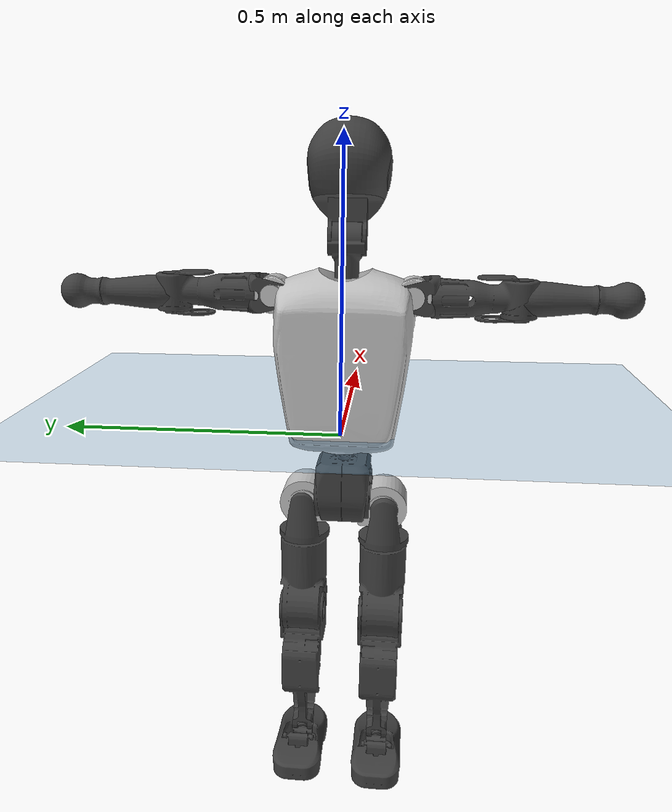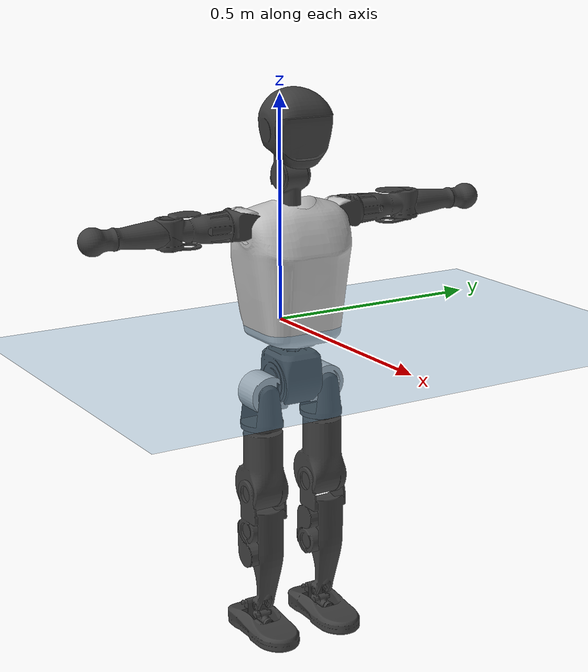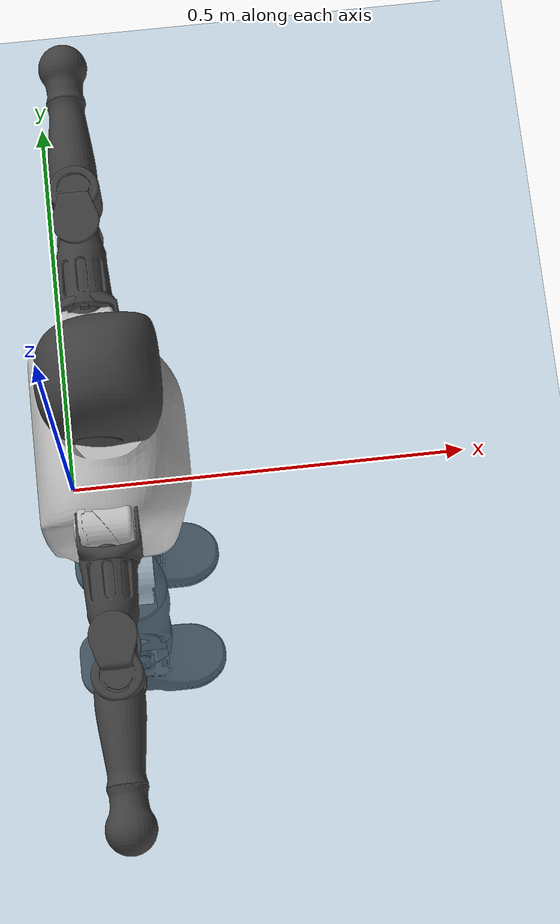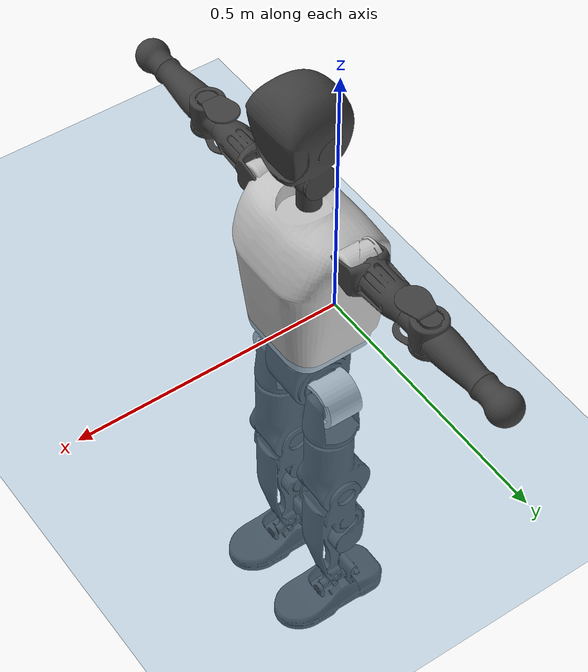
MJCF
<mujoco model="T1">
  <compiler angle="radian" assetdir="assets" balanceinertia="true" inertiafromgeom="false"/>

  <option timestep="0.005" density="1.2" viscosity="2e-05"/>

  <size nkey="1"/>

  <visual>
    <quality shadowsize="8192"/>
    <map shadowclip="0.5"/>
  </visual>

  <default>
    <default class="/">
      <joint armature="0.01" damping="0.01" frictionloss="0.1"/>
      <geom contype="0" conaffinity="0" group="1" solref="-1000 -80"/>
      <site size="0.01 0.005 0.005" group="5"/>
      <general forcelimited="true" biastype="affine" gainprm="25" biasprm="0 -25 -0.6"/>
      <default class="t1">
        <geom rgba="0.25 0.25 0.25 1"/>
        <default class="visual">
          <geom type="mesh" group="2"/>
        </default>
        <default class="collision">
          <geom group="3"/>
        </default>
        <default class="foot">
          <geom size="0.1115 0.05 0.015" type="box" condim="6" group="4" priority="1" solimp="0.015 1 0.015"/>
        </default>
        <default class="reward_collision_sphere">
          <geom group="5" rgba="1 0 0 1"/>
        </default>
      </default>
    </default>
  </default>

  <asset>
    <texture type="skybox" colorspace="auto" name="//unnamed_texture_0" builtin="gradient" rgb1="0.95 0.95 0.95" rgb2="0.95 0.95 0.95" width="100" height="600"/>
    <texture type="2d" colorspace="auto" name="texplane" builtin="checker" rgb1="0.345 0.575 0.748" rgb2="0.345 0.575 0.748" markrgb="1 1 1" width="512" height="512"/>
    <material name="MatPlane" class="/" texture="texplane" texuniform="true" texrepeat="2 2" specular="0.9"/>
    <mesh name="Trunk" class="/" file="Trunk.stl"/>
    <mesh name="H1" class="/" file="H1.stl"/>
    <mesh name="H2" class="/" file="H2.stl"/>
    <mesh name="AL1" class="/" file="AL1.stl"/>
    <mesh name="AL2" class="/" file="AL2.stl"/>
    <mesh name="AL3" class="/" file="AL3.stl"/>
    <mesh name="left_hand_link" class="/" file="left_hand_link.stl"/>
    <mesh name="AR1" class="/" file="AR1.stl"/>
    <mesh name="AR2" class="/" file="AR2.stl"/>
    <mesh name="AR3" class="/" file="AR3.stl"/>
    <mesh name="right_hand_link" class="/" file="right_hand_link.stl"/>
    <mesh name="Waist" class="/" file="Waist.stl"/>
    <mesh name="Hip_Pitch_Left" class="/" file="Hip_Pitch_Left.stl"/>
    <mesh name="Hip_Roll_Left" class="/" file="Hip_Roll_Left.stl"/>
    <mesh name="Hip_Yaw_Left" class="/" file="Hip_Yaw_Left.stl"/>
    <mesh name="Shank_Left" class="/" file="Shank_Left.stl"/>
    <mesh name="Ankle_Cross_Left" class="/" file="Ankle_Cross_Left.stl"/>
    <mesh name="left_foot_link" class="/" file="left_foot_link.stl"/>
    <mesh name="Hip_Pitch_Right" class="/" file="Hip_Pitch_Right.stl"/>
    <mesh name="Hip_Roll_Right" class="/" file="Hip_Roll_Right.stl"/>
    <mesh name="Hip_Yaw_Right" class="/" file="Hip_Yaw_Right.stl"/>
    <mesh name="Shank_Right" class="/" file="Shank_Right.stl"/>
    <mesh name="Ankle_Cross_Right" class="/" file="Ankle_Cross_Right.stl"/>
    <mesh name="right_foot_link" class="/" file="right_foot_link.stl"/>
  </asset>

  <worldbody>
    <geom name="floor" class="/" size="100 100 0.125" type="plane" group="0" material="MatPlane"/>
    <light name="toplight_shadow" class="/" pos="0 0 5" dir="0.0990148 0.0990148 -0.990148" type="directional" ambient="0.04 0.04 0.04" diffuse="0.55 0.55 0.55" specular="0.12 0.12 0.12"/>
    <light name="toplight_fill" class="/" pos="0 0 5" dir="0.0990148 0.0990148 -0.990148" type="directional" castshadow="false" ambient="0.04 0.04 0.04" diffuse="0.3 0.3 0.3" specular="0.08 0.08 0.08"/>
    <body name="trunk" childclass="t1" pos="-0.000221641 -0.000956718 0.002738" quat="1 -9.05539e-05 7.20405e-05 1.90788e-05">
      <inertial pos="0.0479292 -0.00355221 0.113924" quat="0.999928 0.0103524 -0.00571832 0.00186243" mass="7.78673" diaginertia="0.0415426 0.0125214 0.0853013"/>
      <joint name="//unnamed_joint_0" type="free" armature="0" damping="0" frictionloss="0"/>
      <geom name="//unnamed_geom_1" class="visual" rgba="0.76 0.76 0.76 1" mesh="Trunk"/>
      <geom name="//unnamed_geom_2" class="collision" size="0.0660525 0.0880699 0.132105" pos="0.0511063 0 0.130829" type="box"/>
      <geom name="//unnamed_geom_3" class="reward_collision_sphere" size="0.10128" pos="0.0511063 0 0.109024"/>
      <geom name="//unnamed_geom_4" class="reward_collision_sphere" size="0.0132105" pos="0.0511063 0.0595072 0"/>
      <geom name="//unnamed_geom_5" class="reward_collision_sphere" size="0.0132105" pos="0.0511063 -0.0595072 0"/>
      <geom name="//unnamed_geom_6" class="reward_collision_sphere" size="0.0132105" pos="0.0511063 0.074909 0.196243"/>
      <geom name="//unnamed_geom_7" class="reward_collision_sphere" size="0.0132105" pos="0.0511063 -0.074909 0.196243"/>
      <site name="imu" pos="0.000541428 0.0138941 -0.00450837" size="0.00880699"/>
      <camera name="track" pos="0 -1.40017 0" quat="0.707107 0.707107 0 0" mode="trackcom"/>
      <camera name="ego_camera" pos="0.103916 0 0.457901" quat="-0.5 -0.5 0.5 0.5"/>
      <body name="H1" pos="0.0525223 -0.00265778 0.26448" quat="0.999999 0.000438432 0.000850853 0.000994778">
        <inertial pos="-0.00190731 -4.82276e-05 0.0635035" quat="0.763647 -0.0127568 0.00232874 0.645503" mass="0.293998" diaginertia="0.000106166 3.83948e-05 0.000232112"/>
        <joint name="AAHead_yaw" pos="0 0 0" axis="0.00225371 0.000871089 0.999997" range="-1.55085 1.61841" armature="0.00886238" damping="0" frictionloss="0.0776811"/>
        <geom name="//unnamed_geom_8" class="visual" mesh="H1"/>
        <body name="H2" pos="-0.000535172 -0.000449069 0.0653919" quat="0.999999 0.000792187 0.000546481 -0.000438247">
          <inertial pos="0.00463344 0.00262171 0.110193" quat="0.987902 0.113469 -0.0664158 -0.0822387" mass="0.430652" diaginertia="0.000911004 0.000320126 0.00263524"/>
          <joint name="Head_pitch" pos="0 0 0" axis="0.012743 -0.999914 -0.00308911" range="-1.23732 0.363006" armature="0.00888498" damping="0.00283303" frictionloss="0.0896755"/>
          <geom name="//unnamed_geom_9" class="visual" mesh="H2"/>
          <geom name="//unnamed_geom_10" class="collision" size="0.070456" pos="0.00851772 0 0.119927"/>
          <geom name="//unnamed_geom_11" class="reward_collision_sphere" size="0.079263" pos="0.0170354 0 0.109024"/>
        </body>
      </body>
      <body name="AL1" pos="0.0494128 0.0757849 0.236725" quat="1 9.2419e-07 0.000466664 7.09442e-05">
        <inertial pos="-0.000652233 0.0292347 -0.000113711" quat="0.513691 0.495196 -0.504646 0.486041" mass="0.347417" diaginertia="0.000581533 0.000210159 0.000436491"/>
        <joint name="Left_Shoulder_Pitch" pos="0 0 0" axis="0.00368749 0.99993 -0.0112194" range="-3.25584 1.219" armature="0.00755411" damping="0" frictionloss="0.0821848"/>
        <geom name="//unnamed_geom_12" class="visual" rgba="0.76 0.76 0.76 1" mesh="AL1"/>
        <body name="AL2" pos="0.000630663 0.03403 -0.000302842" quat="0.999999 0.000354498 0.000178131 0.00124254">
          <inertial pos="0.00564266 0.0284096 -0.000280592" quat="0.486234 0.517251 -0.491024 0.504899" mass="0.105254" diaginertia="0.000172502 5.65917e-05 0.000259372"/>
          <joint name="Left_Shoulder_Roll" pos="0 0 0" axis="-0.999996 0.000267037 -0.00279401" range="-1.57527 1.75555" armature="0.0098997" damping="0.0206839" frictionloss="0.0925533"/>
          <geom name="//unnamed_geom_13" class="visual" mesh="AL2"/>
          <body name="AL3" pos="-0.00138689 0.0414307 0.00100321" quat="0.999999 -0.000615672 -0.00109764 -0.000533813">
            <inertial pos="0.00238236 0.0587866 0.00102062" quat="0.703125 0.710996 -0.00830414 0.00552308" mass="0.714755" diaginertia="0.0059436 0.00226923 0.000978984"/>
            <joint name="Left_Elbow_Pitch" pos="0 0 0" axis="-0.000585844 -1 -0.000195073" stiffness="0.00347779" range="-2.26597 2.31661" armature="0.0100244" damping="0.00935259" frictionloss="0.0985483"/>
            <geom name="//unnamed_geom_14" class="visual" mesh="AL3"/>
            <geom name="//unnamed_geom_15" class="collision" size="0.026421 0.0660525" pos="0 0.0350042 0" quat="0.707105 0.707108 0 0" type="cylinder"/>
            <geom name="//unnamed_geom_16" class="reward_collision_sphere" size="0.0317052"/>
            <body name="left_hand_link" pos="-0.00146898 0.103923 -0.00144844" quat="0.999999 0.000263885 0.000257985 0.00114837">
              <inertial pos="0.00141506 0.0794218 0.000176898" quat="0.709127 0.705076 0.00179256 -0.00186459" mass="0.218559" diaginertia="0.00377136 0.00141335 0.000319261"/>
              <joint name="Left_Elbow_Yaw" pos="0 0 0" axis="0.0141987 -0.00590169 0.999882" range="-2.47359 0.048299" armature="0.00766921" damping="0" frictionloss="0.095808"/>
              <geom name="//unnamed_geom_17" class="visual" mesh="left_hand_link"/>
              <geom name="//unnamed_geom_18" class="collision" size="0.026421 0.0770612" pos="0 0.091011 0" quat="0.707105 0.707108 0 0" type="cylinder"/>
              <geom name="//unnamed_geom_19" class="reward_collision_sphere" size="0.044035"/>
              <geom name="//unnamed_geom_20" class="reward_collision_sphere" size="0.0308245" pos="0 0.0770093 0"/>
              <geom name="//unnamed_geom_21" class="reward_collision_sphere" size="0.0308245" pos="0 0.150518 0"/>
            </body>
          </body>
        </body>
      </body>
      <body name="AR1" pos="0.0490964 -0.0704869 0.235595" quat="1 1.58649e-05 0.000448433 -2.86921e-06">
        <inertial pos="-0.000820648 -0.0344878 0.000101275" quat="0.504274 0.495739 -0.503495 0.496431" mass="0.371407" diaginertia="0.000611401 0.000213283 0.000450288"/>
        <joint name="Right_Shoulder_Pitch" pos="0 0 0" axis="0.0121741 -0.999926 -0.000128533" range="-1.22685 3.36271" armature="0.00919976" damping="0.013335" frictionloss="0.0768268"/>
        <geom name="//unnamed_geom_22" class="visual" rgba="0.76 0.76 0.76 1" mesh="AR1"/>
        <body name="AR2" pos="0.00195126 -0.0345911 -0.000645874" quat="1 -4.15189e-05 -1.78355e-05 -6.51756e-05">
          <inertial pos="0.00604696 -0.0265446 -0.000898663" quat="0.510722 0.488038 -0.511951 0.488761" mass="0.116602" diaginertia="0.000185072 5.86885e-05 0.000282267"/>
          <joint name="Right_Shoulder_Roll" pos="0 0 0" axis="-0.999976 0.00364373 0.00593765" range="-1.72706 1.62546" armature="0.00926523" damping="0" frictionloss="0.100371"/>
          <geom name="//unnamed_geom_23" class="visual" mesh="AR2"/>
          <body name="AR3" pos="-0.0030309 -0.04348 -0.00287176" quat="1 0.000562573 -0.00027789 -0.0004524">
            <inertial pos="-0.000564346 -0.0570983 -0.000191453" quat="0.710266 0.703915 -0.0027878 0.00414808" mass="0.738087" diaginertia="0.00590748 0.00221137 0.000977278"/>
            <joint name="Right_Elbow_Pitch" pos="0 0 0" axis="0.000613148 1 -0.000215244" range="-2.32682 2.21286" armature="0.00891455" damping="0.0125411" frictionloss="0.0884002"/>
            <geom name="//unnamed_geom_24" class="visual" mesh="AR3"/>
            <geom name="//unnamed_geom_25" class="collision" size="0.026421 0.0660525" pos="0 -0.0350042 0" quat="0.707105 0.707108 0 0" type="cylinder"/>
            <geom name="//unnamed_geom_26" class="reward_collision_sphere" size="0.0317052"/>
            <body name="right_hand_link" pos="-0.00100447 -0.102318 0.00107113" quat="1 5.99387e-06 -1.18979e-05 1.0567e-05">
              <inertial pos="0.000270854 -0.0763481 -0.00143198" quat="0.707457 0.706657 -0.0012696 -0.0117446" mass="0.210468" diaginertia="0.00350268 0.00134459 0.000323323"/>
              <joint name="Right_Elbow_Yaw" pos="0 0 0" axis="-0.00223458 0.0159165 0.999871" stiffness="0.00195112" range="0.0121198 2.49342" armature="0.00915559" damping="0.0075814" frictionloss="0.0915621"/>
              <geom name="//unnamed_geom_27" class="visual" mesh="right_hand_link"/>
              <geom name="//unnamed_geom_28" class="collision" size="0.026421 0.0770612" pos="0 -0.091011 0" quat="0.707105 0.707108 0 0" type="cylinder"/>
              <geom name="//unnamed_geom_29" class="reward_collision_sphere" size="0.044035"/>
              <geom name="//unnamed_geom_30" class="reward_collision_sphere" size="0.0308245" pos="0 -0.0770093 0"/>
              <geom name="//unnamed_geom_31" class="reward_collision_sphere" size="0.0308245" pos="0 -0.150518 0"/>
            </body>
          </body>
        </body>
      </body>
      <body name="Waist" pos="0.0515856 -0.00252268 -0.126408" quat="0.999999 0.000394935 -0.000303104 -0.00157019">
        <inertial pos="0.000474527 -0.00382135 0.00691739" quat="0.983647 0.000352818 -0.180089 0.00267129" mass="1.77586" diaginertia="0.00237391 0.000869183 0.00706271"/>
        <joint name="Waist" pos="0 0 0" axis="0.00700802 0.0112519 0.999912" stiffness="0.00637787" range="-1.57934 1.56323" armature="0.00879494" damping="0" frictionloss="0.0766783"/>
        <geom name="//unnamed_geom_32" class="visual" mesh="Waist"/>
        <body name="Hip_Pitch_Left" pos="0.00287792 0.0721339 0.00250371" quat="0.999999 0.000790804 -0.00105639 -0.000944822">
          <inertial pos="0.000547408 -0.00537688 -0.0195184" quat="0.975881 0.218108 0.00760586 0.00521218" mass="0.694971" diaginertia="0.000802091 0.000247947 0.00185921"/>
          <joint name="Left_Hip_Pitch" pos="0 0 0" axis="0.000703921 1 -0.000291132" range="-1.77717 1.57297" armature="0.00886809" damping="0.00691196" frictionloss="0.0914911"/>
          <geom name="//unnamed_geom_33" class="visual" rgba="0.76 0.76 0.76 1" mesh="Hip_Pitch_Left"/>
          <body name="Hip_Roll_Left" pos="0.00257428 0.00213806 -0.0198734" quat="0.999999 -6.2502e-05 -0.00100771 -0.000177421">
            <inertial pos="-0.00159666 -0.00314829 -0.0590192" quat="0.702752 -0.0146188 -0.00161489 0.711282" mass="0.258792" diaginertia="0.00074525 0.000248804 0.000781994"/>
            <joint name="Left_Hip_Roll" pos="0 0 0" axis="-0.999951 0.0026255 -0.0095429" range="-1.62183 0.25519" armature="0.00992694" damping="0.00644591" frictionloss="0.0910785"/>
            <geom name="//unnamed_geom_34" class="visual" mesh="Hip_Roll_Left"/>
            <geom name="//unnamed_geom_35" class="reward_collision_sphere" size="0.0484385"/>
            <body name="Hip_Yaw_Left" pos="0.00174745 0.00148815 -0.0871148" quat="0.999999 0.00142826 0.00026123 0.000235271">
              <inertial pos="-0.00683841 0.000265298 -0.0991914" quat="0.694333 -0.0374415 -0.0336697 0.71789" mass="1.49658" diaginertia="0.0112487 0.0042834 0.00415944"/>
              <joint name="Left_Hip_Yaw" pos="0 0 0" axis="0.00535662 0.000862785 -0.999985" range="-1.0188 0.95517" armature="0.00833182" damping="0.0126919" frictionloss="0.0946704"/>
              <geom name="//unnamed_geom_36" class="visual" mesh="Hip_Yaw_Left"/>
              <geom name="//unnamed_geom_37" class="collision" size="0.044035 0.070456" type="cylinder"/>
              <body name="Shank_Left" pos="-0.00914672 0.0016453 -0.149245" quat="1 -5.42198e-05 -0.000130136 2.73674e-05">
                <inertial pos="-0.0022867 -0.00272062 -0.136159" quat="0.997743 0.00156648 -0.0197445 0.0641637" mass="1.15078" diaginertia="0.0154092 0.00558253 0.00280829"/>
                <joint name="Left_Knee_Pitch" pos="0 0 0" axis="-0.00718399 0.999965 -0.00423485" stiffness="0.0032748" range="0.037282 2.3651" armature="0.0090561" damping="0.00703081" frictionloss="0.0838694"/>
                <geom name="//unnamed_geom_38" class="visual" mesh="Shank_Left"/>
                <geom name="//unnamed_geom_39" class="collision" size="0.044035 0.0660525" pos="0 0 -0.130829" type="cylinder"/>
                <geom name="//unnamed_geom_40" class="reward_collision_sphere" size="0.0572455"/>
                <body name="Ankle_Cross_Left" pos="0.000869316 0.000436362 -0.303351" quat="0.999999 -0.00078632 0.000534417 -0.000594178">
                  <inertial pos="-0.000379271 -8.58502e-05 -0.0105627" quat="0.443294 0.549316 0.552807 0.442885" mass="0.0513275" diaginertia="1.31754e-05 4.23729e-06 1.73659e-05"/>
                  <joint name="Left_Ankle_Pitch" pos="0 0 0" axis="-0.0111814 0.999936 0.00142382" stiffness="0.00476621" range="-0.873864 0.354714" armature="0.00881735" damping="0.0175665" frictionloss="0.0764454"/>
                  <geom name="//unnamed_geom_41" class="visual" mesh="Ankle_Cross_Left"/>
                  <body name="left_foot_link" pos="-2.36905e-05 0.0039905 -0.0139737" quat="1 0.000470101 0.00015316 -0.000147006">
                    <inertial pos="0.000189156 0.00281424 -0.0104072" quat="0.00245699 0.628356 0.00630182 0.777896" mass="0.451301" diaginertia="0.001238 0.000409899 0.00342322"/>
                    <joint name="Left_Ankle_Roll" pos="0 0 0" axis="-0.999899 0.0140774 0.0018384" range="-0.449713 0.492405" armature="0.00969423" damping="0.00915265" frictionloss="0.089968"/>
                    <geom name="//unnamed_geom_42" class="visual" mesh="left_foot_link"/>
                    <geom name="left_foot" class="foot" size="0.106177 0.0514867 0.0135343" pos="0.00851772 0 -0.0163536"/>
                    <geom name="//unnamed_geom_44" class="reward_collision_sphere" size="0.0457964" pos="0.00851772 0 -0.0163536"/>
                    <geom name="//unnamed_geom_45" class="reward_collision_sphere" size="0.026421" pos="0.0809184 -0.0161019 -0.0163536"/>
                    <geom name="//unnamed_geom_46" class="reward_collision_sphere" size="0.026421" pos="-0.0596241 -0.0161019 -0.0163536"/>
                    <site name="left_foot" class="foot" pos="0.00851772 0 -0.0163536" size="0.00880699"/>
                  </body>
                </body>
              </body>
            </body>
          </body>
        </body>
        <body name="Hip_Pitch_Right" pos="0.0026439 -0.0752589 -0.00244795" quat="1 -0.00010294 -0.000260071 -0.000139691">
          <inertial pos="-0.00232957 0.00447954 -0.0197665" quat="0.975441 -0.219992 0.00991405 -0.00448443" mass="0.67614" diaginertia="0.000789417 0.000242136 0.00188733"/>
          <joint name="Right_Hip_Pitch" pos="0 0 0" axis="-0.00178595 -0.999996 -0.00214357" range="-1.58599 1.75416" armature="0.00963673" damping="0.00273876" frictionloss="0.081096"/>
          <geom name="//unnamed_geom_47" class="visual" rgba="0.76 0.76 0.76 1" mesh="Hip_Pitch_Right"/>
          <body name="Hip_Roll_Right" pos="-0.000451143 -0.00219809 -0.0210193" quat="1 0.000316781 -0.000395578 9.73312e-05">
            <inertial pos="0.00133457 -0.0030061 -0.0611907" quat="0.697554 -0.00774245 -0.00841217 0.716441" mass="0.253134" diaginertia="0.000751647 0.000249216 0.000773663"/>
            <joint name="Right_Hip_Roll" pos="0 0 0" axis="-0.999999 -0.00089321 0.000672849" range="-0.184956 1.57242" armature="0.00861596" damping="0.00666515" frictionloss="0.0759189"/>
            <geom name="//unnamed_geom_48" class="visual" mesh="Hip_Roll_Right"/>
            <geom name="//unnamed_geom_49" class="reward_collision_sphere" size="0.0484385"/>
            <body name="Hip_Yaw_Right" pos="0.00338726 -0.000105127 -0.087595" quat="0.999999 0.000833425 -0.00122363 -0.000225965">
              <inertial pos="-0.00615313 -0.00252892 -0.0960283" quat="0.713532 -0.0305521 -0.0314585 0.699249" mass="1.48177" diaginertia="0.011231 0.00414994 0.00390853"/>
              <joint name="Right_Hip_Yaw" pos="0 0 0" axis="0.0114655 0.0102106 -0.999882" range="-1.04608 1.06126" armature="0.00915625" damping="0.0120228" frictionloss="0.0874301"/>
              <geom name="//unnamed_geom_50" class="visual" mesh="Hip_Yaw_Right"/>
              <geom name="//unnamed_geom_51" class="collision" size="0.044035 0.070456" type="cylinder"/>
              <body name="Shank_Right" pos="-0.0119688 0.000594324 -0.145708" quat="1 -1.64648e-05 -3.67439e-05 -6.60065e-08">
                <inertial pos="-0.00577508 0.000343485 -0.135229" quat="0.999355 -0.000806034 -0.0191967 -0.030337" mass="1.17367" diaginertia="0.0148528 0.0056312 0.0029233"/>
                <joint name="Right_Knee_Pitch" pos="0 0 0" axis="0.000872723 -0.999999 0.000891713" range="-2.30715 0.0155178" armature="0.00874198" damping="0.00773019" frictionloss="0.0895238"/>
                <geom name="//unnamed_geom_52" class="visual" mesh="Shank_Right"/>
                <geom name="//unnamed_geom_53" class="collision" size="0.044035 0.0660525" pos="0 0 -0.130829" type="cylinder"/>
                <geom name="//unnamed_geom_54" class="reward_collision_sphere" size="0.0572455"/>
                <body name="Ankle_Cross_Right" pos="0.000295801 -0.000148922 -0.305125" quat="0.999999 0.000835199 -0.00110179 -4.60588e-05">
                  <inertial pos="-0.00259004 0.00115406 -0.011304" quat="0.447233 0.544957 0.546307 0.452275" mass="0.0478498" diaginertia="1.22102e-05 4.30994e-06 1.63419e-05"/>
                  <joint name="Right_Ankle_Pitch" pos="0 0 0" axis="-0.00886038 -0.999907 -0.01041" range="-0.296137 0.880746" armature="0.0086769" damping="0" frictionloss="0.0757785"/>
                  <geom name="//unnamed_geom_55" class="visual" mesh="Ankle_Cross_Right"/>
                  <body name="right_foot_link" pos="0.00107941 -0.00181155 -0.0125112" quat="1 0.000252574 -0.000182356 -0.000231809">
                    <inertial pos="-0.00213447 -0.00295105 -0.0102583" quat="-0.00584196 0.613754 0.00766986 0.789438" mass="0.471653" diaginertia="0.00121792 0.000403958 0.00327958"/>
                    <joint name="Right_Ankle_Roll" pos="0 0 0" axis="-1 8.34304e-06 2.46439e-05" stiffness="0.00452505" range="-0.422133 0.426936" armature="0.00951851" damping="0.0193717" frictionloss="0.0892845"/>
                    <geom name="//unnamed_geom_56" class="visual" mesh="right_foot_link"/>
                    <geom name="right_foot" class="foot" size="0.0997575 0.045875 0.0130022" pos="0.00851772 0 -0.0163536"/>
                    <geom name="//unnamed_geom_58" class="reward_collision_sphere" size="0.035228"/>
                    <geom name="//unnamed_geom_59" class="reward_collision_sphere" size="0.026421" pos="0.00851772 0 -0.0163536"/>
                    <geom name="//unnamed_geom_60" class="reward_collision_sphere" size="0.026421" pos="0.0809184 0.0161019 -0.0163536"/>
                    <geom name="//unnamed_geom_61" class="reward_collision_sphere" size="0.026421" pos="-0.0596241 0.0161019 -0.0163536"/>
                    <site name="right_foot" class="foot" pos="0.00851772 0 -0.0163536" size="0.00880699"/>
                  </body>
                </body>
              </body>
            </body>
          </body>
        </body>
      </body>
    </body>
  </worldbody>

  <contact>
    <pair class="/" geom1="floor" geom2="left_foot" name="//unnamed_contact_0"/>
    <pair class="/" geom1="floor" geom2="right_foot" name="//unnamed_contact_1"/>
  </contact>

  <actuator>
    <general name="AAHead_yaw" class="/" joint="AAHead_yaw" forcerange="-6.76286 6.76286" gainprm="21.6702" biasprm="0 -21.6702 -0.484623"/>
    <general name="Head_pitch" class="/" joint="Head_pitch" forcerange="-6.77983 6.77983" gainprm="21.6702" biasprm="0 -21.6702 -0.484623"/>
    <general name="Left_Shoulder_Pitch" class="/" joint="Left_Shoulder_Pitch" forcerange="-15.2355 15.2355" gainprm="21.6702" biasprm="0 -21.6702 -0.484623"/>
    <general name="Left_Shoulder_Roll" class="/" joint="Left_Shoulder_Roll" forcerange="-15.2565 15.2565" gainprm="21.6702" biasprm="0 -21.6702 -0.484623"/>
    <general name="Left_Elbow_Pitch" class="/" joint="Left_Elbow_Pitch" forcerange="-17.4687 17.4687" gainprm="21.6702" biasprm="0 -21.6702 -0.484623"/>
    <general name="Left_Elbow_Yaw" class="/" joint="Left_Elbow_Yaw" forcerange="-14.4715 14.4715" gainprm="21.6702" biasprm="0 -21.6702 -0.484623"/>
    <general name="Right_Shoulder_Pitch" class="/" joint="Right_Shoulder_Pitch" forcerange="-14.4545 14.4545" gainprm="21.6702" biasprm="0 -21.6702 -0.484623"/>
    <general name="Right_Shoulder_Roll" class="/" joint="Right_Shoulder_Roll" forcerange="-15.5942 15.5942" gainprm="21.6702" biasprm="0 -21.6702 -0.484623"/>
    <general name="Right_Elbow_Pitch" class="/" joint="Right_Elbow_Pitch" forcerange="-17.4304 17.4304" gainprm="21.6702" biasprm="0 -21.6702 -0.484623"/>
    <general name="Right_Elbow_Yaw" class="/" joint="Right_Elbow_Yaw" forcerange="-16.378 16.378" gainprm="21.6702" biasprm="0 -21.6702 -0.484623"/>
    <general name="Waist" class="/" joint="Waist" forcerange="-27.3595 27.3595" gainprm="21.6702" biasprm="0 -21.6702 -0.484623"/>
    <general name="Left_Hip_Pitch" class="/" joint="Left_Hip_Pitch" forcerange="-39.021 39.021" gainprm="21.6702" biasprm="0 -21.6702 -0.484623"/>
    <general name="Left_Hip_Roll" class="/" joint="Left_Hip_Roll" forcerange="-29.1589 29.1589" gainprm="21.6702" biasprm="0 -21.6702 -0.484623"/>
    <general name="Left_Hip_Yaw" class="/" joint="Left_Hip_Yaw" forcerange="-24.2228 24.2228" gainprm="21.6702" biasprm="0 -21.6702 -0.484623"/>
    <general name="Left_Knee_Pitch" class="/" joint="Left_Knee_Pitch" forcerange="-57.9609 57.9609" gainprm="21.6702" biasprm="0 -21.6702 -0.484623"/>
    <general name="Left_Ankle_Pitch" class="/" joint="Left_Ankle_Pitch" forcerange="-16.3864 16.3864" gainprm="21.6702" biasprm="0 -21.6702 -0.484623"/>
    <general name="Left_Ankle_Roll" class="/" joint="Left_Ankle_Roll" forcerange="-13.4394 13.4394" gainprm="21.6702" biasprm="0 -21.6702 -0.484623"/>
    <general name="Right_Hip_Pitch" class="/" joint="Right_Hip_Pitch" forcerange="-39.2972 39.2972" gainprm="21.6702" biasprm="0 -21.6702 -0.484623"/>
    <general name="Right_Hip_Roll" class="/" joint="Right_Hip_Roll" forcerange="-24.4109 24.4109" gainprm="21.6702" biasprm="0 -21.6702 -0.484623"/>
    <general name="Right_Hip_Yaw" class="/" joint="Right_Hip_Yaw" forcerange="-24.5336 24.5336" gainprm="21.6702" biasprm="0 -21.6702 -0.484623"/>
    <general name="Right_Knee_Pitch" class="/" joint="Right_Knee_Pitch" forcerange="-58.3315 58.3315" gainprm="21.6702" biasprm="0 -21.6702 -0.484623"/>
    <general name="Right_Ankle_Pitch" class="/" joint="Right_Ankle_Pitch" forcerange="-19.0963 19.0963" gainprm="21.6702" biasprm="0 -21.6702 -0.484623"/>
    <general name="Right_Ankle_Roll" class="/" joint="Right_Ankle_Roll" forcerange="-11.9265 11.9265" gainprm="21.6702" biasprm="0 -21.6702 -0.484623"/>
  </actuator>

  <sensor>
    <gyro site="imu" name="imu_angular_velocity"/>
    <velocimeter site="imu" name="imu_linear_velocity"/>
    <framelinvel objtype="site" objname="left_foot" name="left_foot_global_linear_velocity"/>
    <framelinvel objtype="site" objname="right_foot" name="right_foot_global_linear_velocity"/>
  </sensor>

  <keyframe>
    <key name="home" qpos="0 0 0.6385 1 0 0 0 0 0 0 1.4 0 -0.4 0 -1.4 0 0.4 0 -0.4 0 0 0.8 -0.4 0 0.4 0 0 -0.8 0.4 0"/>
  </keyframe>
</mujoco>
